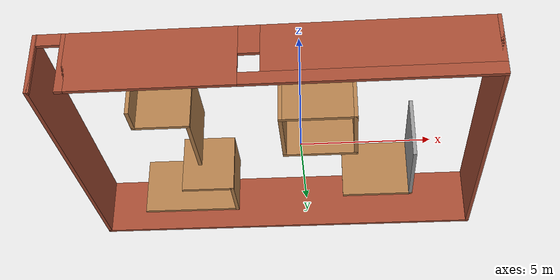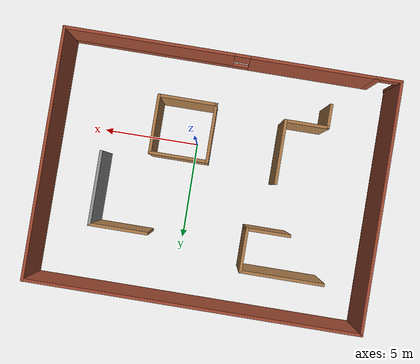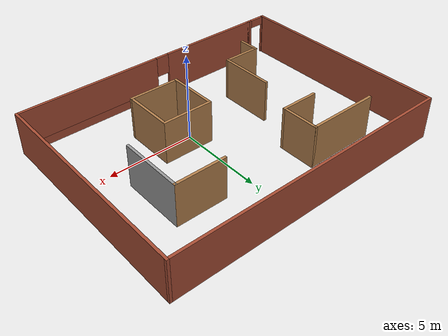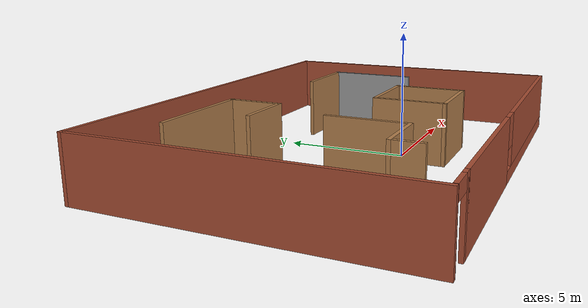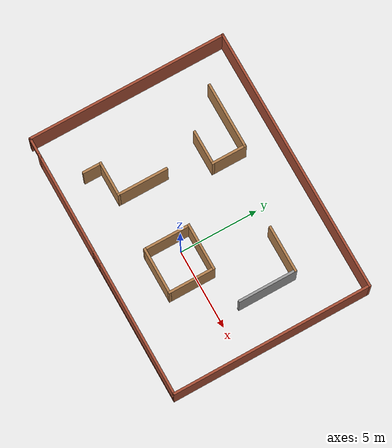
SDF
<?xml version='1.0'?>
<sdf version='1.7'>
  <model name='room'>
    <pose>-1.10243 1.80089 0 0 -0 0</pose>
    <link name='Wall_10'>
      <collision name='Wall_10_Collision'>
        <geometry>
          <box>
            <size>4.25 0.15 2.5</size>
          </box>
        </geometry>
        <pose>0 0 1.25 0 -0 0</pose>
      </collision>
      <visual name='Wall_10_Visual'>
        <pose>0 0 1.25 0 -0 0</pose>
        <geometry>
          <box>
            <size>4.25 0.15 2.5</size>
          </box>
        </geometry>
        <material>
          <script>
            <uri>file://media/materials/scripts/gazebo.material</uri>
            <name>Gazebo/Wood</name>
          </script>
          <ambient>1 1 1 1</ambient>
        </material>
        <meta>
          <layer>0</layer>
        </meta>
      </visual>
      <pose>-4.12448 4.17439 0 0 -0 0</pose>
    </link>
    <link name='Wall_11'>
      <collision name='Wall_11_Collision'>
        <geometry>
          <box>
            <size>2.25 0.15 2.5</size>
          </box>
        </geometry>
        <pose>0 0 1.25 0 -0 0</pose>
      </collision>
      <visual name='Wall_11_Visual'>
        <pose>0 0 1.25 0 -0 0</pose>
        <geometry>
          <box>
            <size>2.25 0.15 2.5</size>
          </box>
        </geometry>
        <material>
          <script>
            <uri>file://media/materials/scripts/gazebo.material</uri>
            <name>Gazebo/Wood</name>
          </script>
          <ambient>1 1 1 1</ambient>
        </material>
        <meta>
          <layer>0</layer>
        </meta>
      </visual>
      <pose>-2.07448 3.12439 0 0 -0 -1.5708</pose>
    </link>
    <link name='Wall_12'>
      <collision name='Wall_12_Collision'>
        <geometry>
          <box>
            <size>2.25 0.15 2.5</size>
          </box>
        </geometry>
        <pose>0 0 1.25 0 -0 0</pose>
      </collision>
      <visual name='Wall_12_Visual'>
        <pose>0 0 1.25 0 -0 0</pose>
        <geometry>
          <box>
            <size>2.25 0.15 2.5</size>
          </box>
        </geometry>
        <material>
          <script>
            <uri>file://media/materials/scripts/gazebo.material</uri>
            <name>Gazebo/Wood</name>
          </script>
          <ambient>1 1 1 1</ambient>
        </material>
        <meta>
          <layer>0</layer>
        </meta>
      </visual>
      <pose>-3.12448 2.07439 0 0 -0 3.14159</pose>
    </link>
    <link name='Wall_14'>
      <collision name='Wall_14_Collision'>
        <geometry>
          <box>
            <size>3.25 0.15 2.5</size>
          </box>
        </geometry>
        <pose>0 0 1.25 0 -0 0</pose>
      </collision>
      <visual name='Wall_14_Visual'>
        <pose>0 0 1.25 0 -0 0</pose>
        <geometry>
          <box>
            <size>3.25 0.15 2.5</size>
          </box>
        </geometry>
        <material>
          <script>
            <uri>file://media/materials/scripts/gazebo.material</uri>
            <name>Gazebo/Wood</name>
          </script>
          <ambient>1 1 1 1</ambient>
        </material>
        <meta>
          <layer>0</layer>
        </meta>
      </visual>
      <pose>-3.08942 -1.94271 0 0 -0 -1.5708</pose>
    </link>
    <link name='Wall_15'>
      <collision name='Wall_15_Collision'>
        <geometry>
          <box>
            <size>2.25 0.15 2.5</size>
          </box>
        </geometry>
        <pose>0 0 1.25 0 -0 0</pose>
      </collision>
      <visual name='Wall_15_Visual'>
        <pose>0 0 1.25 0 -0 0</pose>
        <geometry>
          <box>
            <size>2.25 0.15 2.5</size>
          </box>
        </geometry>
        <material>
          <script>
            <uri>file://media/materials/scripts/gazebo.material</uri>
            <name>Gazebo/Wood</name>
          </script>
          <ambient>1 1 1 1</ambient>
        </material>
        <meta>
          <layer>0</layer>
        </meta>
      </visual>
      <pose>-4.13942 -3.49271 0 0 -0 3.14159</pose>
    </link>
    <link name='Wall_16'>
      <collision name='Wall_16_Collision'>
        <geometry>
          <box>
            <size>1.25 0.15 2.5</size>
          </box>
        </geometry>
        <pose>0 0 1.25 0 -0 0</pose>
      </collision>
      <visual name='Wall_16_Visual'>
        <pose>0 0 1.25 0 -0 0</pose>
        <geometry>
          <box>
            <size>1.25 0.15 2.5</size>
          </box>
        </geometry>
        <material>
          <script>
            <uri>file://media/materials/scripts/gazebo.material</uri>
            <name>Gazebo/Wood</name>
          </script>
          <ambient>1 1 1 1</ambient>
        </material>
        <meta>
          <layer>0</layer>
        </meta>
      </visual>
      <pose>-5.18942 -4.04271 0 0 -0 -1.5708</pose>
    </link>
    <link name='Wall_18'>
      <collision name='Wall_18_Collision'>
        <geometry>
          <box>
            <size>3 0.15 2.5</size>
          </box>
        </geometry>
        <pose>0 0 1.25 0 -0 0</pose>
      </collision>
      <visual name='Wall_18_Visual'>
        <pose>0 0 1.25 0 -0 0</pose>
        <geometry>
          <box>
            <size>3 0.15 2.5</size>
          </box>
        </geometry>
        <material>
          <script>
            <uri>file://media/materials/scripts/gazebo.material</uri>
            <name>Gazebo/Wood</name>
          </script>
          <ambient>1 1 1 1</ambient>
        </material>
        <meta>
          <layer>0</layer>
        </meta>
      </visual>
      <pose>4.20326 3.08555 0 0 -0 0</pose>
    </link>
    <link name='Wall_19'>
      <collision name='Wall_19_Collision'>
        <geometry>
          <box>
            <size>3.75 0.15 2.5</size>
          </box>
        </geometry>
        <pose>0 0 1.25 0 -0 0</pose>
      </collision>
      <visual name='Wall_19_Visual'>
        <pose>0 0 1.25 0 -0 0</pose>
        <geometry>
          <box>
            <size>3.75 0.15 2.5</size>
          </box>
        </geometry>
        <material>
          <script>
            <uri>file://media/materials/scripts/gazebo.material</uri>
            <name>Gazebo/Grey</name>
          </script>
          <ambient>1 1 1 1</ambient>
        </material>
        <meta>
          <layer>0</layer>
        </meta>
      </visual>
      <pose>5.62826 1.28555 0 0 -0 -1.5708</pose>
    </link>
    <link name='Wall_21'>
      <collision name='Wall_21_Collision'>
        <geometry>
          <box>
            <size>3 0.15 2.5</size>
          </box>
        </geometry>
        <pose>0 0 1.25 0 -0 0</pose>
      </collision>
      <visual name='Wall_21_Visual'>
        <pose>0 0 1.25 0 -0 0</pose>
        <geometry>
          <box>
            <size>3 0.15 2.5</size>
          </box>
        </geometry>
        <material>
          <script>
            <uri>file://media/materials/scripts/gazebo.material</uri>
            <name>Gazebo/Wood</name>
          </script>
          <ambient>1 1 1 1</ambient>
        </material>
        <meta>
          <layer>0</layer>
        </meta>
      </visual>
      <pose>1.84409 -0.876644 0 0 -0 0</pose>
    </link>
    <link name='Wall_22'>
      <collision name='Wall_22_Collision'>
        <geometry>
          <box>
            <size>3 0.15 2.5</size>
          </box>
        </geometry>
        <pose>0 0 1.25 0 -0 0</pose>
      </collision>
      <visual name='Wall_22_Visual'>
        <pose>0 0 1.25 0 -0 0</pose>
        <geometry>
          <box>
            <size>3 0.15 2.5</size>
          </box>
        </geometry>
        <material>
          <script>
            <uri>file://media/materials/scripts/gazebo.material</uri>
            <name>Gazebo/Wood</name>
          </script>
          <ambient>1 1 1 1</ambient>
        </material>
        <meta>
          <layer>0</layer>
        </meta>
      </visual>
      <pose>3.26909 -2.30165 0 0 -0 -1.5708</pose>
    </link>
    <link name='Wall_23'>
      <collision name='Wall_23_Collision'>
        <geometry>
          <box>
            <size>3 0.15 2.5</size>
          </box>
        </geometry>
        <pose>0 0 1.25 0 -0 0</pose>
      </collision>
      <visual name='Wall_23_Visual'>
        <pose>0 0 1.25 0 -0 0</pose>
        <geometry>
          <box>
            <size>3 0.15 2.5</size>
          </box>
        </geometry>
        <material>
          <script>
            <uri>file://media/materials/scripts/gazebo.material</uri>
            <name>Gazebo/Wood</name>
          </script>
          <ambient>1 1 1 1</ambient>
        </material>
        <meta>
          <layer>0</layer>
        </meta>
      </visual>
      <pose>1.84409 -3.72664 0 0 -0 3.14159</pose>
    </link>
    <link name='Wall_24'>
      <collision name='Wall_24_Collision'>
        <geometry>
          <box>
            <size>3 0.15 2.5</size>
          </box>
        </geometry>
        <pose>0 0 1.25 0 -0 0</pose>
      </collision>
      <visual name='Wall_24_Visual'>
        <pose>0 0 1.25 0 -0 0</pose>
        <geometry>
          <box>
            <size>3 0.15 2.5</size>
          </box>
        </geometry>
        <material>
          <script>
            <uri>file://media/materials/scripts/gazebo.material</uri>
            <name>Gazebo/Wood</name>
          </script>
          <ambient>1 1 1 1</ambient>
        </material>
        <meta>
          <layer>0</layer>
        </meta>
      </visual>
      <pose>0.41909 -2.30165 0 0 -0 1.5708</pose>
    </link>
    <link name='Wall_4'>
      <pose>0.625 -6.3 0 0 -0 0</pose>
      <visual name='Wall_4_Visual_0'>
        <pose>-4.69861 0 1.25 0 -0 0</pose>
        <geometry>
          <box>
            <size>6.35278 0.15 2.5</size>
          </box>
        </geometry>
        <material>
          <script>
            <uri>file://media/materials/scripts/gazebo.material</uri>
            <name>Gazebo/Bricks</name>
          </script>
          <ambient>1 1 1 1</ambient>
        </material>
        <meta>
          <layer>0</layer>
        </meta>
      </visual>
      <collision name='Wall_4_Collision_0'>
        <geometry>
          <box>
            <size>6.35278 0.15 2.5</size>
          </box>
        </geometry>
        <pose>-4.69861 0 1.25 0 -0 0</pose>
      </collision>
      <visual name='Wall_4_Visual_1'>
        <pose>3.17639 0 0.25 0 -0 0</pose>
        <geometry>
          <box>
            <size>9.39722 0.15 0.5</size>
          </box>
        </geometry>
        <material>
          <script>
            <uri>file://media/materials/scripts/gazebo.material</uri>
            <name>Gazebo/Bricks</name>
          </script>
          <ambient>1 1 1 1</ambient>
        </material>
        <meta>
          <layer>0</layer>
        </meta>
      </visual>
      <collision name='Wall_4_Collision_1'>
        <geometry>
          <box>
            <size>9.39722 0.15 0.5</size>
          </box>
        </geometry>
        <pose>3.17639 0 0.25 0 -0 0</pose>
      </collision>
      <visual name='Wall_4_Visual_2'>
        <pose>3.57639 0 1.5 0 -0 0</pose>
        <geometry>
          <box>
            <size>8.59722 0.15 2</size>
          </box>
        </geometry>
        <material>
          <script>
            <uri>file://media/materials/scripts/gazebo.material</uri>
            <name>Gazebo/Bricks</name>
          </script>
          <ambient>1 1 1 1</ambient>
        </material>
        <meta>
          <layer>0</layer>
        </meta>
      </visual>
      <collision name='Wall_4_Collision_2'>
        <geometry>
          <box>
            <size>8.59722 0.15 2</size>
          </box>
        </geometry>
        <pose>3.57639 0 1.5 0 -0 0</pose>
      </collision>
      <visual name='Wall_4_Visual_3'>
        <pose>-1.12222 0 1.9 0 -0 0</pose>
        <geometry>
          <box>
            <size>0.8 0.15 1.2</size>
          </box>
        </geometry>
        <material>
          <script>
            <uri>file://media/materials/scripts/gazebo.material</uri>
            <name>Gazebo/Bricks</name>
          </script>
          <ambient>1 1 1 1</ambient>
        </material>
        <meta>
          <layer>0</layer>
        </meta>
      </visual>
      <collision name='Wall_4_Collision_3'>
        <geometry>
          <box>
            <size>0.8 0.15 1.2</size>
          </box>
        </geometry>
        <pose>-1.12222 0 1.9 0 -0 0</pose>
      </collision>
    </link>
    <link name='Wall_5'>
      <collision name='Wall_5_Collision'>
        <geometry>
          <box>
            <size>12.75 0.15 2.5</size>
          </box>
        </geometry>
        <pose>0 0 1.25 0 -0 0</pose>
      </collision>
      <visual name='Wall_5_Visual'>
        <pose>0 0 1.25 0 -0 0</pose>
        <geometry>
          <box>
            <size>12.75 0.15 2.5</size>
          </box>
        </geometry>
        <material>
          <script>
            <uri>file://media/materials/scripts/gazebo.material</uri>
            <name>Gazebo/Bricks</name>
          </script>
          <ambient>1 1 1 1</ambient>
        </material>
        <meta>
          <layer>0</layer>
        </meta>
      </visual>
      <pose>8.425 -0 0 0 -0 1.5708</pose>
    </link>
    <link name='Wall_6'>
      <collision name='Wall_6_Collision'>
        <geometry>
          <box>
            <size>17 0.15 2.5</size>
          </box>
        </geometry>
        <pose>0 0 1.25 0 -0 0</pose>
      </collision>
      <visual name='Wall_6_Visual'>
        <pose>0 0 1.25 0 -0 0</pose>
        <geometry>
          <box>
            <size>17 0.15 2.5</size>
          </box>
        </geometry>
        <material>
          <script>
            <uri>file://media/materials/scripts/gazebo.material</uri>
            <name>Gazebo/Bricks</name>
          </script>
          <ambient>1 1 1 1</ambient>
        </material>
        <meta>
          <layer>0</layer>
        </meta>
      </visual>
      <pose>-0 6.3 0 0 -0 3.14159</pose>
    </link>
    <link name='Wall_7'>
      <collision name='Wall_7_Collision'>
        <geometry>
          <box>
            <size>12.75 0.15 2.5</size>
          </box>
        </geometry>
        <pose>0 0 1.25 0 -0 0</pose>
      </collision>
      <visual name='Wall_7_Visual'>
        <pose>0 0 1.25 0 -0 0</pose>
        <geometry>
          <box>
            <size>12.75 0.15 2.5</size>
          </box>
        </geometry>
        <material>
          <script>
            <uri>file://media/materials/scripts/gazebo.material</uri>
            <name>Gazebo/Bricks</name>
          </script>
          <ambient>1 1 1 1</ambient>
        </material>
        <meta>
          <layer>0</layer>
        </meta>
      </visual>
      <pose>-8.425 -0 0 0 -0 -1.5708</pose>
    </link>
    <link name='Wall_8'>
      <pose>-7.8 -6.3 0 0 -0 0</pose>
      <visual name='Wall_8_Visual_0'>
        <pose>-0.60725 0 1.25 0 -0 0</pose>
        <geometry>
          <box>
            <size>0.185499 0.15 2.5</size>
          </box>
        </geometry>
        <material>
          <script>
            <uri>file://media/materials/scripts/gazebo.material</uri>
            <name>Gazebo/Bricks</name>
          </script>
          <ambient>1 1 1 1</ambient>
        </material>
        <meta>
          <layer>0</layer>
        </meta>
      </visual>
      <collision name='Wall_8_Collision_0'>
        <geometry>
          <box>
            <size>0.185499 0.15 2.5</size>
          </box>
        </geometry>
        <pose>-0.60725 0 1.25 0 -0 0</pose>
      </collision>
      <visual name='Wall_8_Visual_1'>
        <pose>0.54275 0 1.25 0 -0 0</pose>
        <geometry>
          <box>
            <size>0.314501 0.15 2.5</size>
          </box>
        </geometry>
        <material>
          <script>
            <uri>file://media/materials/scripts/gazebo.material</uri>
            <name>Gazebo/Bricks</name>
          </script>
          <ambient>1 1 1 1</ambient>
        </material>
        <meta>
          <layer>0</layer>
        </meta>
      </visual>
      <collision name='Wall_8_Collision_1'>
        <geometry>
          <box>
            <size>0.314501 0.15 2.5</size>
          </box>
        </geometry>
        <pose>0.54275 0 1.25 0 -0 0</pose>
      </collision>
      <visual name='Wall_8_Visual_2'>
        <pose>-0.064501 0 2.25 0 -0 0</pose>
        <geometry>
          <box>
            <size>0.9 0.15 0.5</size>
          </box>
        </geometry>
        <material>
          <script>
            <uri>file://media/materials/scripts/gazebo.material</uri>
            <name>Gazebo/Bricks</name>
          </script>
          <ambient>1 1 1 1</ambient>
        </material>
        <meta>
          <layer>0</layer>
        </meta>
      </visual>
      <collision name='Wall_8_Collision_2'>
        <geometry>
          <box>
            <size>0.9 0.15 0.5</size>
          </box>
        </geometry>
        <pose>-0.064501 0 2.25 0 -0 0</pose>
      </collision>
    </link>
    <static>1</static>
  </model>
</sdf>
